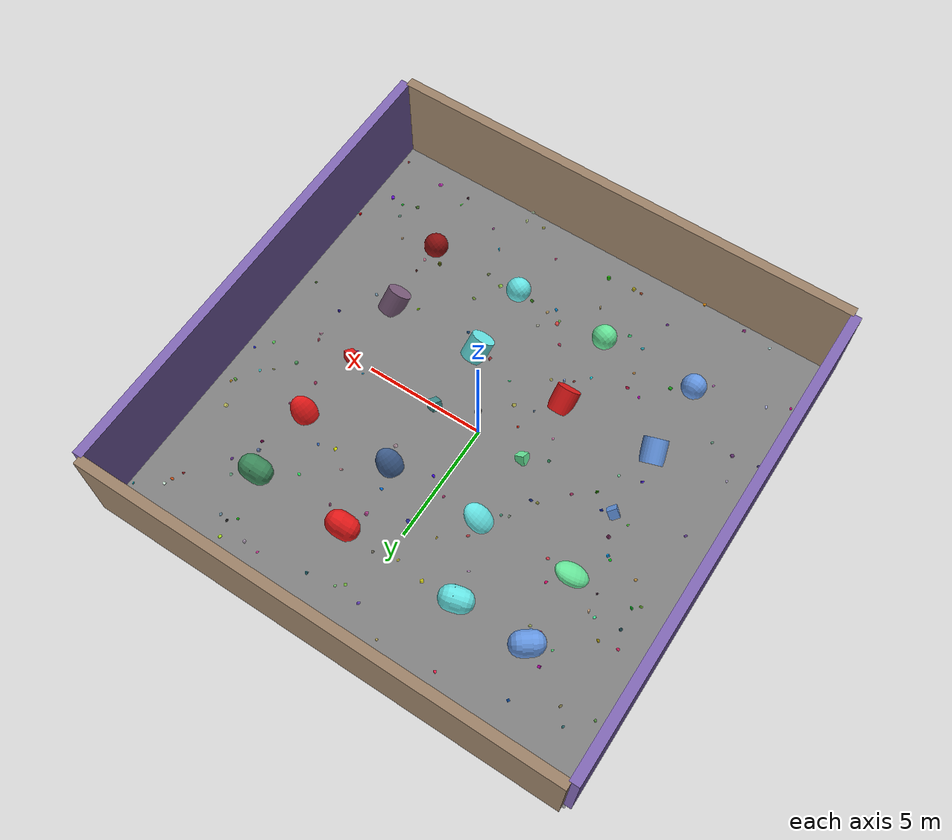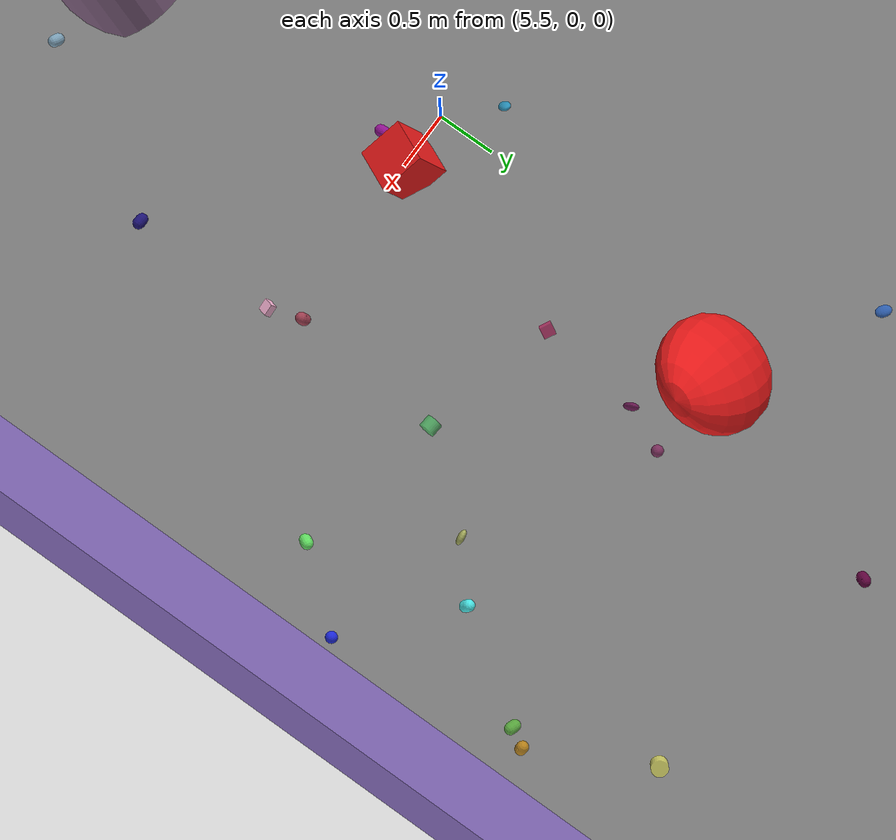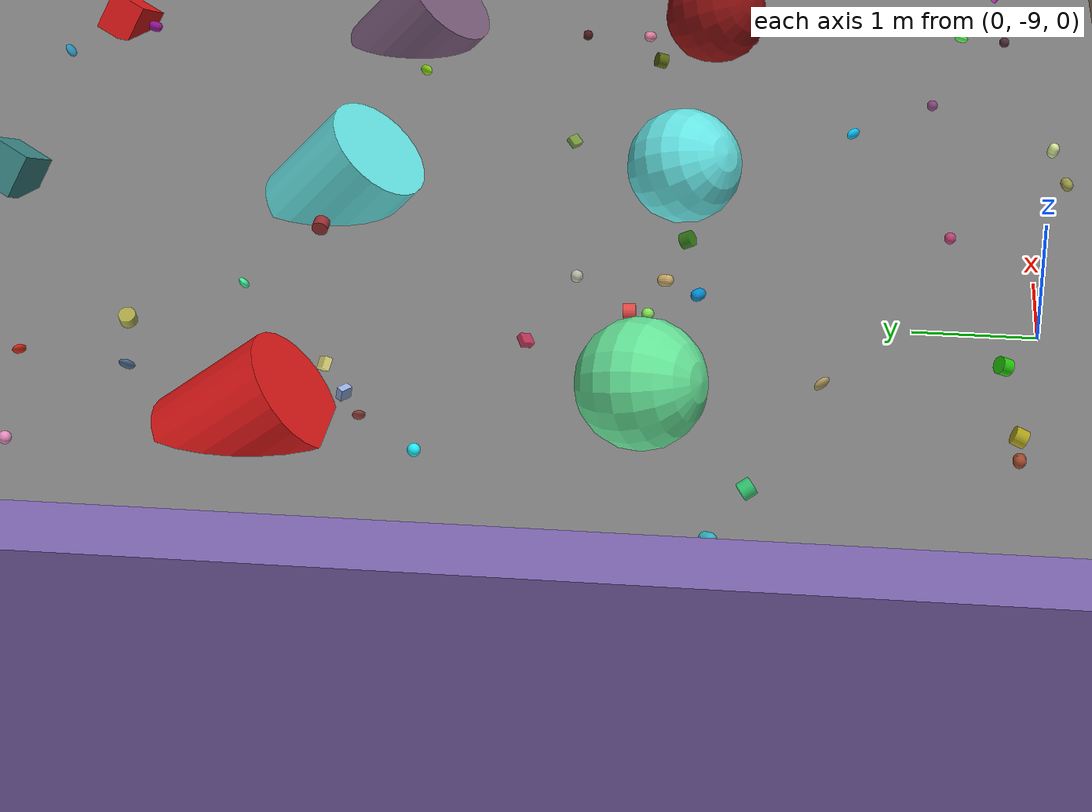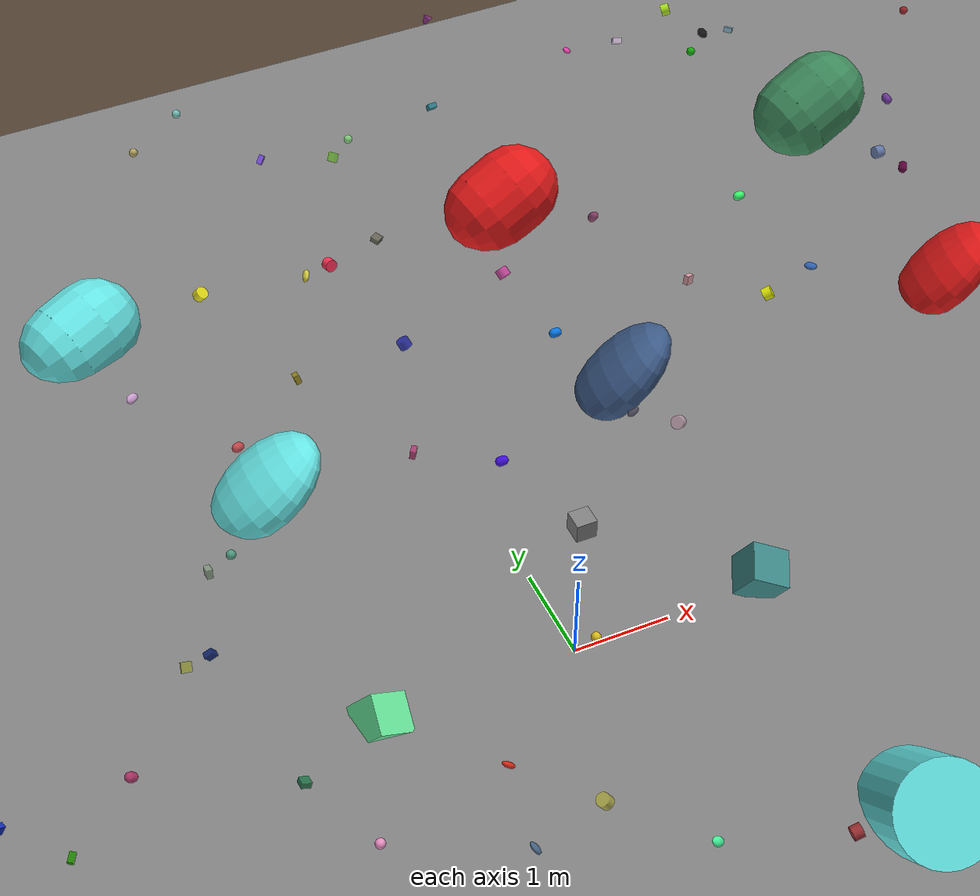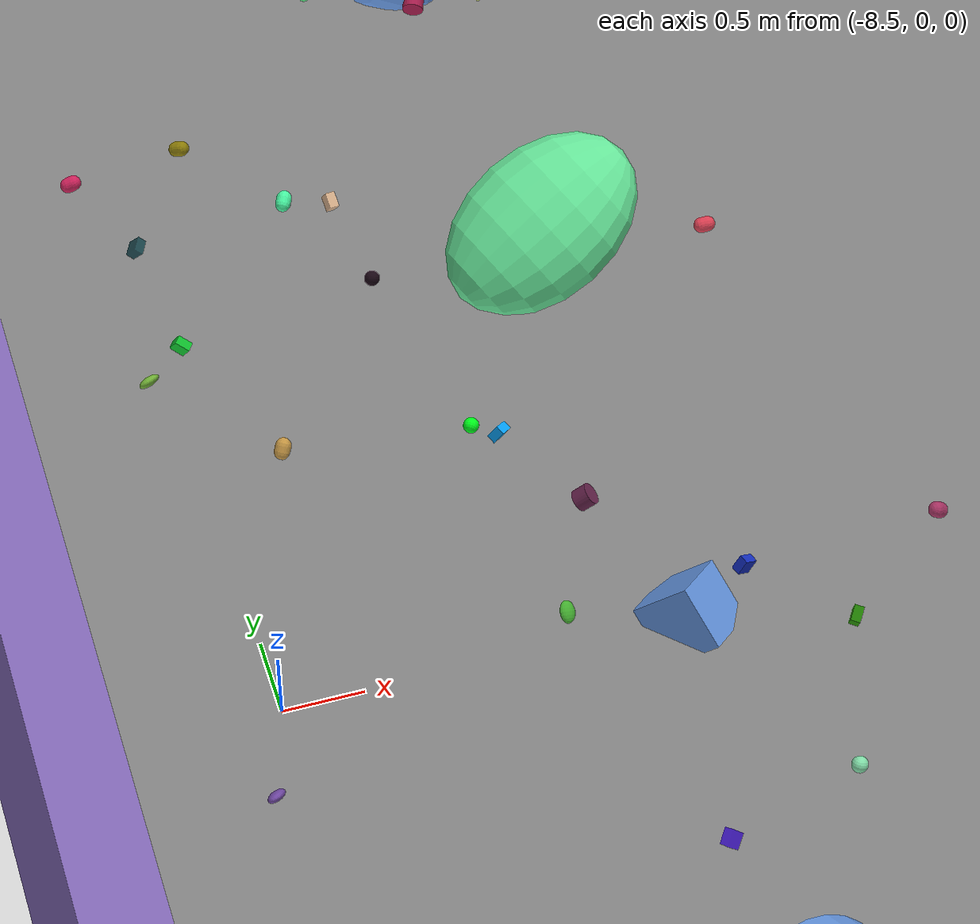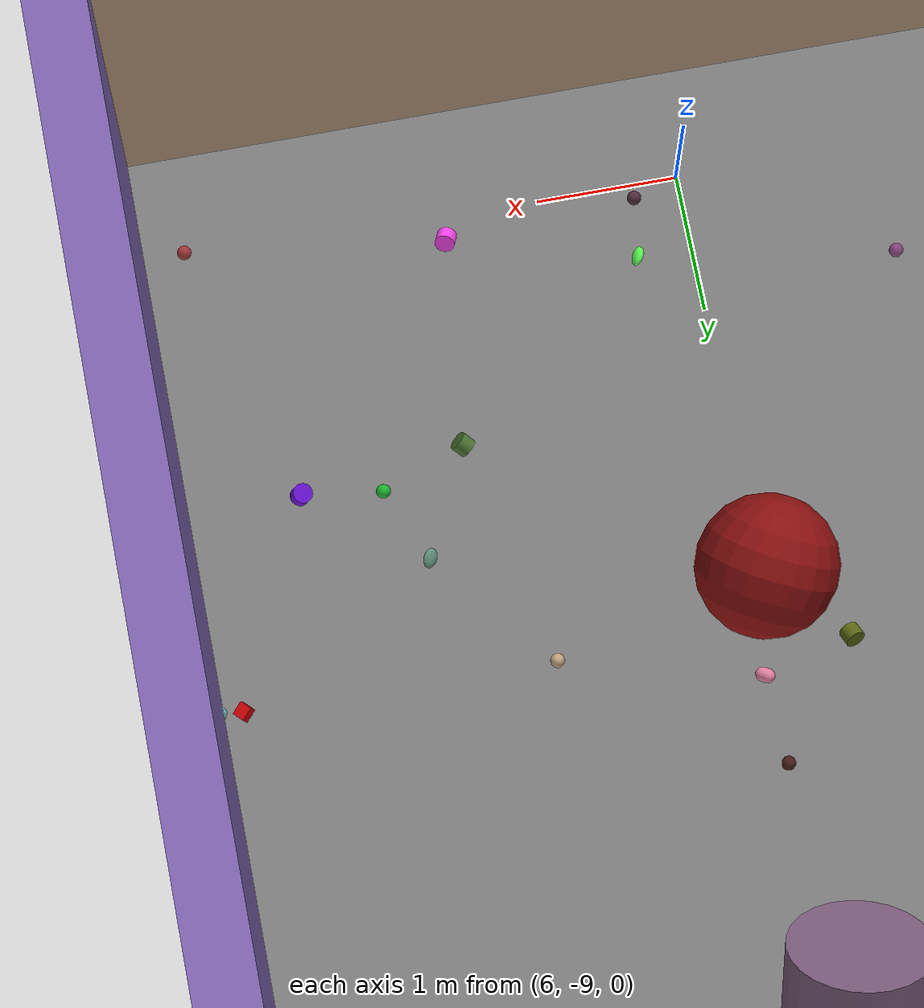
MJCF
<mujoco model="indoor">
    <compiler angle="radian" coordinate="local" inertiafromgeom="true"/>
    <option timestep="0.1" iterations="4" />

    <default>
        <joint armature="0" damping="1"/>
         <geom contype="0" conaffinity="0" condim="3" density="5.0" friction="1 0.5 0.5"/>

         <default class="borderpost">
            <geom type="box" size="9.9 0.2 2" material="matmarble"/>
        </default>
        <default class="roof">
            <geom type="box" size="10 10 0.2" rgba=".3 .55 .55 0.4"/>
        </default>
        <default class="object1">
            <geom type="capsule" material="object1" size="0.5 0.2"/>
        </default>
        <default class="object2">
            <geom type="ellipsoid" material="object2" size="0.5 0.3 0.7"/>
        </default>
        <default class="object3">
            <geom type="box" material="object3" size="0.2 0.2 0.2"/>
        </default>

        <default class="object4">
            <geom type="cylinder" material="object4" size="0.5 0.5" condim="4" friction="1 .01 .01"/>
        </default>

        <default class="object5">
            <geom type="sphere" material="object5" size="0.5"/>
        </default>

        <default class="object6">
            <geom type="capsule" material="object1" size="0.05 0.02"/>
        </default>
        <default class="object7">
            <geom type="ellipsoid" material="object2" size="0.05 0.03 0.07"/>
        </default>
        <default class="object8">
            <geom type="box" material="object3" size="0.05 0.03 0.05"/>
        </default>

        <default class="object9">
            <geom type="cylinder" material="object4" size="0.07 0.05" condim="4" friction="1 .01 .01"/>
        </default>

        <default class="object10">
            <geom type="sphere" material="object5" size="0.05"/>
        </default>

    </default>

    <asset>
        <texture name="texgeom" type="cube" builtin="flat" mark="cross" width="128" height="128"
            rgb1="0.6 0.6 0.6" rgb2="0.6 0.6 0.6" markrgb="1 1 1"/>
        <texture name="texmarble" type="cube" file="marble.png"/>
        <material name="matmarble" texture="texmarble" rgba=".7 .7 .7 1"/>
        <texture builtin="gradient" height="100" rgb1="1 1 1" rgb2="0 0 0" type="skybox" width="100"/>
        <texture builtin="flat" height="1278" mark="cross" markrgb="1 1 1" name="texgeom1" random="0.01" rgb1="0.8 0.6 0.4" rgb2="0.8 0.6 0.4" type="cube" width="127"/>
        <texture builtin="checker" height="100" name="texplane" rgb1="0.6 0.6 0.6" rgb2="0.4 0.4 0.4" type="2d" width="100"/>
        <material name="MatPlane" reflectance="0" shininess="0.2" specular="0.5" texrepeat="40 40" texture="texplane"/>
        <material name="geom" texture="texgeom" texuniform="true"/>
        <material name='object1' texture="texgeom" texuniform="true" rgba=".4 .9 .6 1" />
        <material name='object2' texture="texgeom" texuniform="true" rgba=".4 .6 .9 1" />
        <material name='object3' texture="texgeom" texuniform="true" rgba=".4 .9 .9 1" />
        <material name='object4' texture="texgeom" texuniform="true" rgba=".8 .6 .8 1" />
        <material name='object5' texture="texgeom" texuniform="true" rgba=".9 .1 .1 1" />

      </asset>

    <worldbody>

        <!--geom class="roof" pos="0 0 4" euler="0 0 0"/-->
        <geom class="borderpost" pos="0 10 2" euler="0 0 0" rgba=".6 .5 .4 1"/>
        <geom class="borderpost" pos="0 -10 2" euler="0 0 0" rgba=".6 .5 .4 1"/>
        <geom class="borderpost" pos="10 0 2" euler="0 0 1.5708" rgba=".5 .4 .7 1"/>
        <geom class="borderpost" pos="-10 0 2" euler="0 0 1.5708" rgba=".5 .4 .7 1"/>

        <light cutoff="80" diffuse="1 1 1" dir="-0 0 -1.3" directional="true" exponent="5" pos="0 1 1.3" specular=".1 .1 .1"/>
        <light pos="5 0 5" diffuse="1 1 1" specular="1 1 1" intensity="50"/>
        <geom conaffinity="1" condim="3" material="MatPlane" name="floor" pos="0 0 0" size="10 10 10" type="plane" rgba="0.5 0.5 0.5 1.0"/>
        <body name="fake_go2" pos="0 0 0.3" mocap="true">
            <geom name="fake_go2_geom" pos="0 0 0" size="0.01 0.01 0.3" type="box" rgba=".8 .7 .3 1"/>
            <body>
                <joint/>
                <camera name="came" mode="fixed" resolution="256 256" euler="1.57 -1.57 0" orthographic="false" fovy="30"/>
                <geom name="body_came" pos="0 0 1.5" size="0.1 0.1 0.1" type="box"/>
            </body>
        </body>

        <body name="GodView" pos="0 0 15">
            <camera name="godcame" mode="fixed" resolution="1080 1080" quat="1 0 0 0" fovy="70"/>
        </body>

        <body pos="-6 6 0.2" quat="-0.632456 -0.632456 0.316228 0.316228">
            <joint/>
            <geom class="object1" rgba=".4 .6 .9 1"/>
        </body>
        <body pos="-3 6 0.1" quat="-0.5547 -0.5547 0.5547 0.27735">
            <joint/>
            <geom class="object1" rgba=".4 .9 .9 1"/>
        </body>
        <body pos="2 6 0.3" quat="-0.471405 -0.471405 0.707107 0.235702">
            <joint/>
            <geom class="object1" rgba=".9 .1 .1 1"/>
        </body>
        <body pos="6 6 0.4" quat="-0.471405 -0.471405 0.707107 0.235702">
            <joint/>
            <geom class="object1"/>
        </body>

        <body pos="-6 3 0.3" quat="-0.377964 -0.755929 0.377964 0.377964">
            <joint/>
            <geom class="object2" rgba=".4 .9 .6 1"/>
        </body>
        <body pos="-2 3 0.2" quat="-0.316228 -0.632456 0.632456 0.316228">
            <joint/>
            <geom class="object2" rgba=".4 .9 .9 1"/>
        </body>
        <body pos="2 3 0.2" quat="-0.258199 -0.516398 0.774597 0.258199">
            <joint/>
            <geom class="object2"/>
        </body>
        <body pos="6 3 0.2" quat="-0.258199 -0.516398 0.774597 0.258199">
            <joint/>
            <geom class="object2" rgba=".9 .1 .1 1"/>
        </body>

        <body pos="-6 0 0" quat="0 -0.816497 0.408248 0.408248">
            <joint/>
            <geom class="object3" rgba=".4 .6 .9 1"/>
        </body>
        <body pos="-2 0 0" quat="0 -0.666667 0.666667 0.333333">
            <joint/>
            <geom class="object3" rgba=".4 .9 .6 1"/>
        </body>
        <body pos="2 0 0.2" quat="0 -0.534522 0.801784 0.267261">
            <joint/>
            <geom class="object3"/>
        </body>
        <body pos="6 0 0.1" quat="0 -0.534522 0.801784 0.267261">
            <joint/>
            <geom class="object3" rgba=".9 .1 .1 1"/>
        </body>

        <body pos="-6 -3 0" quat="0.377964 -0.755929 0.377964 0.377964">
            <joint/>
            <geom class="object4" rgba=".4 .6 .9 1"/>
        </body>
        <body pos="-2 -3 0" quat="0.316228 -0.632456 0.632456 0.316228">
            <joint/>
            <geom class="object4" rgba=".9 .1 .1 1"/>
        </body>
        <body pos="2 -3 0.2" quat="0.258199 -0.516398 0.774597 0.258199">
            <joint/>
            <geom class="object4" rgba=".4 .9 .9 1"/>
        </body>
        <body pos="6 -3 0.1" quat="0.258199 -0.516398 0.774597 0.258199">
            <joint/>
            <geom class="object4"/>
        </body>

        <body pos="-6 -6 0.5" quat="0.632456 -0.632456 0.316228 0.316228">
            <joint/>
            <geom class="object5" rgba=".4 .6 .9 1"/>
        </body>
        <body pos="-2 -6 0.5" quat="0.5547 -0.5547 0.5547 0.27735">
            <joint/>
            <geom class="object5" rgba=".4 .9 .6 1"/>
        </body>
        <body pos="2 -6 0.5" quat="0.471405 -0.471405 0.707107 0.235702">
            <joint/>
            <geom class="object5" rgba=".4 .9 .9 1"/>
        </body>
        <body pos="6 -6 0.4" quat="0.471405 -0.471405 0.707107 0.235702">
            <joint/>
            <geom class="object5"/>
        </body>

        <body pos="-1.77 -8.80 0.08" quat="0.380990 0.639594 -0.558686 0.365563">
            <joint/>
            <geom class="object9" rgba="0.78 0.72 0.06 0.82" />
        </body>

        <body pos="-0.11 5.99 0.08" quat="-0.078356 -0.163085 0.592656 -0.784871">
            <joint/>
            <geom class="object9" rgba="0.99 0.19 0.34 0.92" />
        </body>

        <body pos="-7.63 -9.36 0.08" quat="0.633710 -0.325476 -0.346480 0.610269">
            <joint/>
            <geom class="object7" rgba="0.78 0.96 0.96 0.94" />
        </body>

        <body pos="3.43 4.15 0.08" quat="-0.078396 0.783101 0.231344 0.571915">
            <joint/>
            <geom class="object8" rgba="0.88 0.63 0.67 0.96" />
        </body>

        <body pos="-0.60 -4.95 0.08" quat="-0.339245 0.264513 0.815014 -0.388197">
            <joint/>
            <geom class="object8" rgba="0.84 0.17 0.35 0.81" />
        </body>

        <body pos="0.59 -5.96 0.08" quat="0.661675 0.461315 -0.459945 0.371248">
            <joint/>
            <geom class="object6" rgba="0.78 0.65 0.40 0.96" />
        </body>

        <body pos="9.19 -2.01 0.08" quat="-0.194755 0.304710 -0.452815 0.814973">
            <joint/>
            <geom class="object10" rgba="0.22 0.40 0.11 0.83" />
        </body>

        <body pos="-3.44 -6.60 0.08" quat="0.298662 0.051283 0.759192 0.576020">
            <joint/>
            <geom class="object6" rgba="0.18 0.77 0.84 0.87" />
        </body>

        <body pos="6.10 -4.70 0.08" quat="0.635872 -0.579997 0.506369 -0.053492">
            <joint/>
            <geom class="object10" rgba="0.28 0.11 0.10 0.98" />
        </body>

        <body pos="-6.51 8.02 0.08" quat="-0.583889 -0.076005 -0.582774 0.560064">
            <joint/>
            <geom class="object8" rgba="0.07 0.35 0.72 0.97" />
        </body>

        <body pos="8.92 1.17 0.08" quat="-0.238110 -0.726271 -0.485898 0.423954">
            <joint/>
            <geom class="object6" rgba="0.41 0.97 0.41 0.87" />
        </body>

        <body pos="-3.82 -4.76 0.08" quat="-0.489983 0.860043 -0.036210 -0.137591">
            <joint/>
            <geom class="object9" rgba="0.78 0.02 0.23 0.81" />
        </body>

        <body pos="-6.78 6.44 0.08" quat="0.740490 0.645733 0.153131 -0.106080">
            <joint/>
            <geom class="object8" rgba="0.64 0.01 0.59 0.98" />
        </body>

        <body pos="9.51 -9.06 0.08" quat="-0.032844 0.482354 -0.522110 0.702607">
            <joint/>
            <geom class="object10" rgba="0.70 0.19 0.20 0.84" />
        </body>

        <body pos="-8.59 -4.42 0.08" quat="0.562827 -0.060976 -0.668523 -0.482271">
            <joint/>
            <geom class="object9" rgba="0.40 0.17 0.47 0.81" />
        </body>

        <body pos="-1.48 8.76 0.08" quat="0.813308 0.253807 0.495426 0.169304">
            <joint/>
            <geom class="object10" rgba="0.72 0.65 0.37 0.94" />
        </body>

        <body pos="-1.10 4.45 0.08" quat="-0.485642 0.632061 -0.497256 -0.342618">
            <joint/>
            <geom class="object8" rgba="0.59 0.52 0.13 0.92" />
        </body>

        <body pos="2.94 5.53 0.08" quat="-0.257812 0.463777 0.842748 0.090659">
            <joint/>
            <geom class="object6" rgba="0.57 0.23 0.42 0.83" />
        </body>

        <body pos="-1.15 -3.44 0.08" quat="-0.295988 0.294513 -0.216414 0.882507">
            <joint/>
            <geom class="object8" rgba="0.97 0.94 0.53 0.89" />
        </body>

        <body pos="8.60 2.48 0.08" quat="-0.063496 -0.210681 0.289482 0.931548">
            <joint/>
            <geom class="object6" rgba="0.29 0.90 0.90 0.91" />
        </body>

        <body pos="-6.35 0.96 0.08" quat="0.750288 0.295683 0.316752 0.499307">
            <joint/>
            <geom class="object9" rgba="0.40 0.14 0.30 0.92" />
        </body>

        <body pos="4.60 -8.16 0.08" quat="-0.366550 -0.415911 -0.285337 -0.781819">
            <joint/>
            <geom class="object10" rgba="0.58 0.26 0.54 0.81" />
        </body>

        <body pos="-0.04 -5.87 0.08" quat="0.221779 -0.333010 0.594290 0.697666">
            <joint/>
            <geom class="object10" rgba="0.53 0.90 0.33 0.90" />
        </body>

        <body pos="-0.16 8.03 0.08" quat="-0.435847 -0.418547 0.792879 -0.078732">
            <joint/>
            <geom class="object8" rgba="0.50 0.32 0.93 0.89" />
        </body>

        <body pos="8.45 -7.09 0.08" quat="-0.027091 0.635895 -0.668770 0.384254">
            <joint/>
            <geom class="object10" rgba="0.07 0.80 0.17 0.84" />
        </body>

        <body pos="-10.00 -2.54 0.08" quat="-0.700098 -0.291181 -0.039537 0.650779">
            <joint/>
            <geom class="object6" rgba="0.44 0.94 0.54 0.99" />
        </body>

        <body pos="-0.02 -5.72 0.08" quat="-0.469630 0.527162 -0.491886 -0.509506">
            <joint/>
            <geom class="object9" rgba="1.00 0.30 0.28 0.86" />
        </body>

        <body pos="-8.41 2.84 0.08" quat="-0.482934 -0.307465 -0.815086 0.088740">
            <joint/>
            <geom class="object8" rgba="0.06 0.76 0.18 0.95" />
        </body>

        <body pos="-7.48 3.86 0.08" quat="0.537088 -0.094031 0.523179 0.654965">
            <joint/>
            <geom class="object6" rgba="0.28 0.97 0.64 0.98" />
        </body>

        <body pos="1.60 5.08 0.08" quat="0.151105 -0.218665 0.427547 0.864035">
            <joint/>
            <geom class="object9" rgba="0.83 0.27 0.65 0.85" />
        </body>

        <body pos="8.22 -6.56 0.08" quat="-0.303227 0.029770 -0.753565 -0.582500">
            <joint/>
            <geom class="object7" rgba="0.38 0.60 0.51 0.85" />
        </body>

        <body pos="-8.12 7.20 0.08" quat="-0.709038 0.666288 -0.199217 -0.116787">
            <joint/>
            <geom class="object7" rgba="0.48 0.45 0.25 0.89" />
        </body>

        <body pos="5.00 -3.23 0.08" quat="-0.584541 0.325724 -0.660660 -0.340212">
            <joint/>
            <geom class="object7" rgba="0.55 0.84 0.07 0.99" />
        </body>

        <body pos="5.44 7.85 0.08" quat="-0.628447 -0.260090 -0.016572 0.732893">
            <joint/>
            <geom class="object10" rgba="0.08 0.69 0.06 0.96" />
        </body>

        <body pos="-4.33 0.26 0.08" quat="0.366689 -0.637815 0.651052 -0.186716">
            <joint/>
            <geom class="object6" rgba="0.73 0.18 0.41 0.84" />
        </body>

        <body pos="-6.71 0.16 0.08" quat="-0.458505 -0.870519 -0.131911 0.120701">
            <joint/>
            <geom class="object7" rgba="0.28 0.76 0.19 0.88" />
        </body>

        <body pos="1.35 -2.91 0.08" quat="0.602529 -0.137555 -0.783226 0.067785">
            <joint/>
            <geom class="object9" rgba="0.59 0.18 0.19 0.98" />
        </body>

        <body pos="2.84 -5.97 0.08" quat="0.361131 -0.596064 0.713660 -0.070585">
            <joint/>
            <geom class="object9" rgba="0.64 0.89 0.29 0.85" />
        </body>

        <body pos="-2.59 2.40 0.08" quat="-0.900493 0.433995 0.023031 0.015154">
            <joint/>
            <geom class="object10" rgba="0.31 0.66 0.54 0.87" />
        </body>

        <body pos="-7.19 3.77 0.08" quat="-0.729518 -0.134811 -0.239112 0.626462">
            <joint/>
            <geom class="object8" rgba="0.94 0.76 0.59 0.87" />
        </body>

        <body pos="-8.56 7.75 0.08" quat="0.751522 0.418277 -0.043829 -0.508269">
            <joint/>
            <geom class="object7" rgba="0.18 0.47 0.49 0.85" />
        </body>

        <body pos="-1.88 -3.19 0.08" quat="0.263106 -0.845002 0.274585 0.375966">
            <joint/>
            <geom class="object6" rgba="0.28 0.42 0.06 0.86" />
        </body>

        <body pos="6.14 -6.37 0.08" quat="-0.493648 0.486742 -0.717142 0.071422">
            <joint/>
            <geom class="object10" rgba="0.62 0.25 0.52 0.88" />
        </body>

        <body pos="-2.08 2.81 0.08" quat="0.668666 0.389193 0.620901 0.126081">
            <joint/>
            <geom class="object8" rgba="0.77 0.22 0.59 0.88" />
        </body>

        <body pos="3.40 -4.88 0.08" quat="-0.691149 0.524631 0.490963 -0.077662">
            <joint/>
            <geom class="object8" rgba="0.49 0.67 0.21 0.80" />
        </body>

        <body pos="-9.38 6.97 0.08" quat="0.194554 -0.581240 -0.790065 0.010332">
            <joint/>
            <geom class="object6" rgba="0.36 0.65 0.27 0.89" />
        </body>

        <body pos="0.54 6.18 0.08" quat="0.166512 -0.236297 0.733382 -0.615295">
            <joint/>
            <geom class="object8" rgba="0.42 0.41 0.35 0.88" />
        </body>

        <body pos="2.07 8.14 0.08" quat="-0.658686 -0.257149 0.671153 0.222623">
            <joint/>
            <geom class="object8" rgba="0.18 0.49 0.54 0.91" />
        </body>

        <body pos="5.89 -0.29 0.08" quat="-0.249810 0.181812 -0.566974 -0.763596">
            <joint/>
            <geom class="object6" rgba="0.57 0.07 0.57 0.94" />
        </body>

        <body pos="9.41 1.77 0.08" quat="-0.333014 -0.088897 -0.137197 0.928642">
            <joint/>
            <geom class="object10" rgba="0.12 0.16 0.86 0.95" />
        </body>

        <body pos="-4.93 2.89 0.08" quat="-0.560900 0.444273 0.608993 -0.342258">
            <joint/>
            <geom class="object6" rgba="0.98 0.24 0.33 0.84" />
        </body>

        <body pos="-4.51 -9.73 0.08" quat="0.544257 -0.515517 0.513382 -0.417691">
            <joint/>
            <geom class="object8" rgba="0.85 0.51 0.02 0.96" />
        </body>

        <body pos="-9.79 7.19 0.08" quat="-0.254254 -0.467677 -0.605420 -0.591692">
            <joint/>
            <geom class="object6" rgba="0.79 0.75 0.87 0.89" />
        </body>

        <body pos="-2.92 -0.43 0.08" quat="0.544186 -0.428614 -0.358473 0.625818">
            <joint/>
            <geom class="object8" rgba="0.11 0.48 0.29 0.82" />
        </body>

        <body pos="-0.42 5.92 0.08" quat="0.504785 0.683537 -0.517517 0.100728">
            <joint/>
            <geom class="object7" rgba="0.84 0.81 0.25 0.95" />
        </body>

        <body pos="-8.49 3.73 0.08" quat="0.338047 -0.779132 -0.512712 0.125711">
            <joint/>
            <geom class="object8" rgba="0.10 0.29 0.32 0.89" />
        </body>

        <body pos="-7.70 -4.49 0.08" quat="0.333113 -0.466316 -0.335084 -0.747866">
            <joint/>
            <geom class="object6" rgba="0.40 0.62 0.52 0.89" />
        </body>

        <body pos="3.54 -6.17 0.08" quat="0.627493 -0.361342 0.675678 0.138358">
            <joint/>
            <geom class="object6" rgba="0.47 0.54 0.32 0.92" />
        </body>

        <body pos="6.33 -8.88 0.08" quat="-0.618468 0.450301 -0.123270 0.632085">
            <joint/>
            <geom class="object10" rgba="0.31 0.17 0.23 0.92" />
        </body>

        <body pos="7.59 -0.18 0.08" quat="-0.371420 -0.485703 0.262078 0.746629">
            <joint/>
            <geom class="object8" rgba="0.98 0.71 0.84 0.91" />
        </body>

        <body pos="-3.20 1.30 0.08" quat="-0.032237 0.474358 -0.077939 0.876282">
            <joint/>
            <geom class="object8" rgba="0.06 0.14 0.46 0.87" />
        </body>

        <body pos="6.77 6.59 0.08" quat="-0.202818 0.643050 -0.494990 -0.548030">
            <joint/>
            <geom class="object8" rgba="0.52 0.83 0.66 0.88" />
        </body>

        <body pos="-0.54 -1.71 0.08" quat="0.679502 -0.192531 -0.196972 0.680008">
            <joint/>
            <geom class="object9" rgba="0.74 0.72 0.29 0.86" />
        </body>

        <body pos="-5.73 5.37 0.08" quat="-0.617150 -0.328384 0.185714 0.690507">
            <joint/>
            <geom class="object6" rgba="0.68 0.73 0.40 0.97" />
        </body>

        <body pos="1.71 3.97 0.08" quat="-0.427226 -0.521404 0.529553 0.514965">
            <joint/>
            <geom class="object6" rgba="0.03 0.47 0.90 0.91" />
        </body>

        <body pos="-5.35 3.69 0.08" quat="0.734479 -0.655686 0.095384 -0.146690">
            <joint/>
            <geom class="object6" rgba="0.86 0.03 0.41 0.90" />
        </body>

        <body pos="-5.23 -5.65 0.08" quat="0.270796 -0.383195 -0.669750 -0.575558">
            <joint/>
            <geom class="object9" rgba="0.11 0.66 0.11 0.92" />
        </body>

        <body pos="4.78 3.79 0.08" quat="-0.346685 0.280192 -0.655643 0.609454">
            <joint/>
            <geom class="object7" rgba="0.18 0.37 0.68 0.93" />
        </body>

        <body pos="-6.41 -9.53 0.08" quat="0.419162 -0.630734 -0.637018 -0.143827">
            <joint/>
            <geom class="object9" rgba="0.59 0.17 0.51 0.90" />
        </body>

        <body pos="-2.12 -8.79 0.08" quat="-0.492902 0.496872 -0.559959 0.443408">
            <joint/>
            <geom class="object6" rgba="0.63 0.29 0.17 0.92" />
        </body>

        <body pos="2.29 2.23 0.08" quat="-0.286276 -0.234676 -0.852618 -0.368803">
            <joint/>
            <geom class="object9" rgba="0.81 0.67 0.73 0.81" />
        </body>

        <body pos="-8.02 4.51 0.08" quat="-0.593338 0.132889 -0.529993 0.591099">
            <joint/>
            <geom class="object6" rgba="0.61 0.54 0.00 0.86" />
        </body>

        <body pos="-1.32 -1.91 0.08" quat="0.050410 0.540727 -0.716824 0.437306">
            <joint/>
            <geom class="object7" rgba="0.29 0.42 0.56 0.88" />
        </body>

        <body pos="-1.60 -3.68 0.08" quat="0.930832 0.119400 -0.053453 -0.341231">
            <joint/>
            <geom class="object8" rgba="0.59 0.68 0.89 0.98" />
        </body>

        <body pos="1.85 -3.20 0.08" quat="-0.247922 0.601756 0.723647 0.229693">
            <joint/>
            <geom class="object9" rgba="0.49 0.72 0.71 0.87" />
        </body>

        <body pos="-9.90 0.85 0.08" quat="0.292143 0.473074 0.214997 0.802888">
            <joint/>
            <geom class="object9" rgba="0.44 0.64 0.00 0.93" />
        </body>

        <body pos="2.89 -9.35 0.08" quat="0.516568 -0.558199 0.173872 -0.625572">
            <joint/>
            <geom class="object6" rgba="0.66 0.66 0.30 0.88" />
        </body>

        <body pos="-7.11 3.05 0.08" quat="0.476127 -0.499264 0.723163 -0.032765">
            <joint/>
            <geom class="object10" rgba="0.10 0.03 0.08 0.96" />
        </body>

        <body pos="0.59 -5.22 0.08" quat="-0.301409 0.733692 -0.488296 0.363889">
            <joint/>
            <geom class="object6" rgba="0.81 0.82 0.73 0.83" />
        </body>

        <body pos="9.66 -5.73 0.08" quat="0.738995 -0.535538 -0.117337 0.391558">
            <joint/>
            <geom class="object8" rgba="0.86 0.01 0.04 0.96" />
        </body>

        <body pos="6.80 -2.87 0.08" quat="0.144947 0.664363 -0.475640 -0.558013">
            <joint/>
            <geom class="object6" rgba="0.53 0.69 0.79 0.88" />
        </body>

        <body pos="8.50 7.94 0.08" quat="0.698547 0.173366 0.599500 0.350109">
            <joint/>
            <geom class="object6" rgba="0.91 0.35 0.09 0.85" />
        </body>

        <body pos="-3.46 1.25 0.08" quat="0.004617 0.085088 0.393202 0.915495">
            <joint/>
            <geom class="object8" rgba="0.60 0.62 0.22 0.84" />
        </body>

        <body pos="-1.59 6.11 0.08" quat="0.001268 -0.649531 0.678407 0.343324">
            <joint/>
            <geom class="object9" rgba="1.00 0.97 0.04 0.83" />
        </body>

        <body pos="-2.87 2.28 0.08" quat="0.459287 -0.562824 -0.544307 -0.419540">
            <joint/>
            <geom class="object8" rgba="0.55 0.63 0.53 0.85" />
        </body>

        <body pos="8.63 8.24 0.08" quat="0.642697 -0.754361 -0.066222 -0.116170">
            <joint/>
            <geom class="object8" rgba="0.85 0.97 0.89 0.98" />
        </body>

        <body pos="-3.84 8.58 0.08" quat="0.119130 0.721348 -0.406529 0.547904">
            <joint/>
            <geom class="object6" rgba="0.96 0.13 0.32 0.96" />
        </body>

        <body pos="5.60 2.93 0.08" quat="-0.045769 -0.740306 0.557683 0.372615">
            <joint/>
            <geom class="object7" rgba="0.91 0.43 0.32 0.87" />
        </body>

        <body pos="-6.58 -6.67 0.08" quat="0.409700 0.503926 0.550056 0.525018">
            <joint/>
            <geom class="object10" rgba="0.81 0.42 0.81 0.81" />
        </body>

        <body pos="5.12 9.32 0.08" quat="0.571041 -0.654239 0.480871 0.121020">
            <joint/>
            <geom class="object10" rgba="0.18 0.42 0.11 0.90" />
        </body>

        <body pos="3.64 -9.26 0.08" quat="-0.912311 -0.187762 0.025676 -0.363009">
            <joint/>
            <geom class="object6" rgba="0.83 0.92 0.61 0.92" />
        </body>

        <body pos="3.84 -7.43 0.08" quat="0.681550 0.309987 0.607623 -0.264938">
            <joint/>
            <geom class="object7" rgba="0.04 0.79 1.00 0.94" />
        </body>

        <body pos="6.08 8.06 0.08" quat="-0.455545 -0.113403 0.676779 0.567088">
            <joint/>
            <geom class="object8" rgba="0.48 0.63 0.71 0.97" />
        </body>

        <body pos="5.75 8.13 0.08" quat="0.798274 -0.577608 -0.167772 0.031306">
            <joint/>
            <geom class="object6" rgba="0.04 0.04 0.04 0.82" />
        </body>

        <body pos="1.65 -8.31 0.08" quat="-0.056500 0.718876 0.637671 -0.270927">
            <joint/>
            <geom class="object10" rgba="0.82 0.26 0.50 0.89" />
        </body>

        <body pos="6.64 4.86 0.08" quat="0.278029 0.022370 -0.849966 0.446943">
            <joint/>
            <geom class="object6" rgba="0.37 0.02 0.24 0.92" />
        </body>

        <body pos="-8.69 -0.62 0.08" quat="0.375182 -0.001499 0.838941 0.394225">
            <joint/>
            <geom class="object7" rgba="0.47 0.29 0.70 0.88" />
        </body>

        <body pos="-6.38 -6.02 0.08" quat="0.484206 0.688038 0.273132 -0.466420">
            <joint/>
            <geom class="object10" rgba="0.74 0.14 0.54 0.93" />
        </body>

        <body pos="7.61 1.42 0.08" quat="-0.500110 0.456470 -0.530197 0.510310">
            <joint/>
            <geom class="object9" rgba="0.32 0.72 0.40 0.83" />
        </body>

        <body pos="-3.71 -5.46 0.08" quat="0.722148 -0.005357 0.372947 0.582566">
            <joint/>
            <geom class="object7" rgba="0.91 0.62 0.26 0.80" />
        </body>

        <body pos="-1.08 -7.31 0.08" quat="-0.804865 -0.336320 -0.393716 0.289945">
            <joint/>
            <geom class="object7" rgba="0.69 0.60 0.38 0.99" />
        </body>

        <body pos="9.01 -7.17 0.08" quat="0.978002 -0.071072 -0.104412 0.166007">
            <joint/>
            <geom class="object9" rgba="0.39 0.06 0.80 0.98" />
        </body>

        <body pos="0.92 7.97 0.08" quat="-0.703456 -0.126239 0.620777 0.322255">
            <joint/>
            <geom class="object10" rgba="0.56 0.92 0.53 0.81" />
        </body>

        <body pos="-2.02 3.75 0.08" quat="0.138103 0.586040 0.561321 0.567807">
            <joint/>
            <geom class="object6" rgba="0.87 0.26 0.29 0.80" />
        </body>

        <body pos="9.61 8.87 0.08" quat="0.235684 0.687898 -0.425689 0.538552">
            <joint/>
            <geom class="object7" rgba="0.13 0.76 0.82 0.93" />
        </body>

        <body pos="-6.30 -1.63 0.08" quat="0.161035 -0.376454 -0.335060 -0.848578">
            <joint/>
            <geom class="object8" rgba="0.26 0.05 0.94 0.81" />
        </body>

        <body pos="3.64 -9.78 0.08" quat="-0.922391 0.210950 -0.274808 -0.170809">
            <joint/>
            <geom class="object8" rgba="0.81 0.92 0.76 1.00" />
        </body>

        <body pos="-8.01 1.85 0.08" quat="-0.143691 -0.775841 -0.504441 0.350662">
            <joint/>
            <geom class="object6" rgba="0.87 0.65 0.26 0.84" />
        </body>

        <body pos="-3.72 -8.08 0.08" quat="-0.427395 0.649012 -0.521175 0.352836">
            <joint/>
            <geom class="object7" rgba="0.38 0.13 0.55 0.86" />
        </body>

        <body pos="-1.16 -1.00 0.08" quat="0.720429 0.118531 -0.471281 -0.494799">
            <joint/>
            <geom class="object7" rgba="0.90 0.15 0.07 0.88" />
        </body>

        <body pos="-2.73 -6.83 0.08" quat="0.264399 -0.067123 0.527634 -0.804481">
            <joint/>
            <geom class="object9" rgba="0.18 0.86 0.46 0.85" />
        </body>

        <body pos="0.23 0.01 0.08" quat="0.614337 0.504812 -0.506833 -0.332980">
            <joint/>
            <geom class="object10" rgba="0.86 0.74 0.11 0.94" />
        </body>

        <body pos="4.05 8.49 0.08" quat="-0.505704 0.716042 -0.479518 0.040119">
            <joint/>
            <geom class="object7" rgba="1.00 0.26 0.73 0.89" />
        </body>

        <body pos="1.93 2.56 0.08" quat="-0.599843 0.059021 0.772812 -0.198663">
            <joint/>
            <geom class="object7" rgba="0.34 0.33 0.42 0.82" />
        </body>

        <body pos="-8.77 4.40 0.08" quat="-0.634137 0.328557 -0.445767 0.539640">
            <joint/>
            <geom class="object6" rgba="0.91 0.11 0.38 0.86" />
        </body>

        <body pos="4.70 8.42 0.08" quat="0.385063 -0.907385 0.159832 0.053227">
            <joint/>
            <geom class="object8" rgba="0.84 0.75 0.87 0.87" />
        </body>

        <body pos="6.57 2.61 0.08" quat="-0.537914 0.401926 -0.224960 -0.706044">
            <joint/>
            <geom class="object7" rgba="0.41 0.10 0.32 0.94" />
        </body>

        <body pos="-0.78 9.25 0.08" quat="-0.247045 -0.898269 -0.177611 -0.317074">
            <joint/>
            <geom class="object10" rgba="0.48 0.86 0.80 0.84" />
        </body>

        <body pos="-6.85 1.70 0.08" quat="0.545952 -0.082457 0.582460 0.596555">
            <joint/>
            <geom class="object10" rgba="0.00 1.00 0.11 0.93" />
        </body>

        <body pos="5.49 -5.50 0.08" quat="0.394086 -0.429941 0.384540 0.715525">
            <joint/>
            <geom class="object9" rgba="0.35 0.40 0.07 0.94" />
        </body>

        <body pos="7.50 -5.69 0.08" quat="-0.057251 0.940794 0.332102 0.036560">
            <joint/>
            <geom class="object10" rgba="0.76 0.64 0.50 0.96" />
        </body>

        <body pos="-6.70 1.60 0.08" quat="-0.311081 0.265853 -0.142913 0.901180">
            <joint/>
            <geom class="object8" rgba="0.03 0.65 0.99 0.93" />
        </body>

        <body pos="7.15 6.05 0.08" quat="-0.810249 0.537469 0.187900 0.138987">
            <joint/>
            <geom class="object6" rgba="0.41 0.21 0.58 0.95" />
        </body>

        <body pos="5.15 0.38 0.08" quat="0.068637 -0.214504 -0.913864 0.337830">
            <joint/>
            <geom class="object7" rgba="0.15 0.62 0.80 0.86" />
        </body>

        <body pos="1.39 -6.08 0.08" quat="0.527188 0.396320 0.325107 -0.677723">
            <joint/>
            <geom class="object9" rgba="0.18 0.52 0.06 0.85" />
        </body>

        <body pos="-5.08 -0.35 0.08" quat="-0.518541 -0.449139 0.696489 -0.210459">
            <joint/>
            <geom class="object8" rgba="0.13 0.50 0.01 0.94" />
        </body>

        <body pos="0.63 7.73 0.08" quat="-0.168778 0.517483 -0.579589 -0.606467">
            <joint/>
            <geom class="object8" rgba="0.58 0.93 0.30 0.85" />
        </body>

        <body pos="-9.98 4.79 0.08" quat="0.448697 0.723359 0.308654 0.424447">
            <joint/>
            <geom class="object6" rgba="0.41 0.45 0.35 0.90" />
        </body>

        <body pos="6.13 -5.33 0.08" quat="0.553516 0.590318 0.576193 0.114656">
            <joint/>
            <geom class="object6" rgba="0.89 0.51 0.63 0.91" />
        </body>

        <body pos="1.62 -2.99 0.08" quat="0.534740 0.818396 -0.090041 -0.190193">
            <joint/>
            <geom class="object9" rgba="0.43 0.05 0.95 0.89" />
        </body>

        <body pos="6.45 1.72 0.08" quat="-0.136050 0.561610 -0.536867 0.614702">
            <joint/>
            <geom class="object8" rgba="0.77 0.19 0.42 0.82" />
        </body>

        <body pos="-5.43 -1.36 0.08" quat="0.134788 0.132781 0.213401 0.958468">
            <joint/>
            <geom class="object10" rgba="0.55 0.98 0.73 0.85" />
        </body>

        <body pos="8.75 4.40 0.08" quat="0.051127 -0.648359 -0.720575 0.240392">
            <joint/>
            <geom class="object9" rgba="0.92 0.91 0.42 0.85" />
        </body>

        <body pos="-5.59 0.20 0.08" quat="0.866002 0.122442 -0.468852 0.123398">
            <joint/>
            <geom class="object8" rgba="0.08 0.18 0.75 0.90" />
        </body>

        <body pos="2.72 9.81 0.08" quat="0.199056 0.858610 -0.282521 0.378614">
            <joint/>
            <geom class="object8" rgba="0.61 0.24 0.59 0.87" />
        </body>

        <body pos="9.83 -5.74 0.08" quat="0.323546 0.665408 -0.663367 0.111780">
            <joint/>
            <geom class="object6" rgba="0.48 0.81 0.82 0.86" />
        </body>

        <body pos="-9.54 -7.43 0.08" quat="-0.824558 0.011745 0.108475 0.555157">
            <joint/>
            <geom class="object10" rgba="0.91 0.00 0.56 0.92" />
        </body>

        <body pos="-0.65 -8.71 0.08" quat="0.544735 -0.490034 0.193474 0.652456">
            <joint/>
            <geom class="object9" rgba="0.15 0.78 0.04 0.93" />
        </body>

        <body pos="9.25 3.46 0.08" quat="-0.180398 -0.618727 -0.758263 -0.098335">
            <joint/>
            <geom class="object6" rgba="0.82 0.56 0.06 0.81" />
        </body>

        <body pos="7.69 -8.82 0.08" quat="0.470772 0.860592 -0.172177 -0.090055">
            <joint/>
            <geom class="object9" rgba="0.96 0.26 0.92 0.90" />
        </body>

        <body pos="-2.79 4.87 0.08" quat="-0.718051 0.390953 -0.563890 0.116562">
            <joint/>
            <geom class="object7" rgba="0.80 0.62 0.82 1.00" />
        </body>

        <body pos="-9.64 -4.58 0.08" quat="0.377852 0.595325 0.038955 -0.708025">
            <joint/>
            <geom class="object6" rgba="0.26 0.20 0.49 0.86" />
        </body>

        <body pos="8.19 2.13 0.08" quat="-0.037958 -0.875113 -0.112970 -0.469014">
            <joint/>
            <geom class="object7" rgba="0.72 0.75 0.40 0.89" />
        </body>

        <body pos="-2.42 -4.36 0.08" quat="0.715484 -0.066793 -0.155811 -0.677750">
            <joint/>
            <geom class="object10" rgba="0.12 0.94 1.00 0.96" />
        </body>

        <body pos="-1.94 -3.86 0.08" quat="-0.707922 -0.239234 0.306214 0.589786">
            <joint/>
            <geom class="object7" rgba="0.60 0.23 0.20 0.84" />
        </body>

        <body pos="2.72 -3.44 0.08" quat="0.670332 -0.421131 0.599620 -0.117297">
            <joint/>
            <geom class="object6" rgba="0.10 0.30 0.49 0.89" />
        </body>

        <body pos="4.12 3.59 0.08" quat="-0.604781 -0.449152 -0.230128 -0.616071">
            <joint/>
            <geom class="object9" rgba="0.90 0.94 0.01 0.99" />
        </body>

        <body pos="7.50 0.10 0.08" quat="-0.821559 -0.182018 -0.251557 0.478153">
            <joint/>
            <geom class="object6" rgba="0.62 0.25 0.32 0.98" />
        </body>

        <body pos="7.61 -1.42 0.08" quat="-0.347823 0.638531 0.347583 -0.592016">
            <joint/>
            <geom class="object6" rgba="0.12 0.08 0.47 0.94" />
        </body>

        <body pos="-5.54 9.72 0.08" quat="0.344329 0.645624 -0.254233 -0.632434">
            <joint/>
            <geom class="object6" rgba="0.58 0.47 0.28 0.96" />
        </body>

        <body pos="0.38 2.47 0.08" quat="-0.459376 0.644930 0.474775 -0.384224">
            <joint/>
            <geom class="object6" rgba="0.27 0.04 0.97 0.89" />
        </body>

        <body pos="9.16 3.31 0.08" quat="-0.566307 0.553815 0.530835 -0.301329">
            <joint/>
            <geom class="object6" rgba="0.36 0.74 0.23 0.81" />
        </body>

        <body pos="-2.55 -1.31 0.08" quat="0.787227 -0.433768 0.419336 -0.127579">
            <joint/>
            <geom class="object10" rgba="0.91 0.55 0.76 0.98" />
        </body>

        <body pos="-8.67 2.61 0.08" quat="-0.669791 -0.350997 0.649409 0.080307">
            <joint/>
            <geom class="object7" rgba="0.44 0.69 0.21 0.95" />
        </body>

        <body pos="0.18 -2.50 0.08" quat="0.349675 0.399697 -0.184860 -0.826920">
            <joint/>
            <geom class="object7" rgba="0.26 0.96 0.61 0.93" />
        </body>

        <body pos="-6.17 5.39 0.08" quat="-0.058417 -0.351435 -0.702160 0.616484">
            <joint/>
            <geom class="object9" rgba="0.65 0.11 0.30 0.93" />
        </body>

        <body pos="-6.86 5.69 0.08" quat="0.501270 -0.733049 -0.326053 0.324125">
            <joint/>
            <geom class="object10" rgba="0.34 0.98 0.53 0.85" />
        </body>

        <body pos="8.30 7.52 0.08" quat="0.031282 -0.701742 0.372653 0.606391">
            <joint/>
            <geom class="object10" rgba="0.63 0.12 0.14 0.86" />
        </body>

        <body pos="-0.40 2.95 0.08" quat="0.664533 0.346998 -0.578349 0.321715">
            <joint/>
            <geom class="object8" rgba="0.72 0.24 0.47 0.89" />
        </body>

        <body pos="4.64 5.18 0.08" quat="0.585138 0.463631 -0.544593 -0.382202">
            <joint/>
            <geom class="object6" rgba="0.21 0.99 0.42 0.95" />
        </body>

        <body pos="-9.80 -0.53 0.08" quat="-0.650504 -0.719265 0.008417 -0.243787">
            <joint/>
            <geom class="object10" rgba="0.72 0.75 0.38 0.93" />
        </body>

        <body pos="-4.40 -4.64 0.08" quat="-0.434106 -0.482609 -0.716339 -0.255926">
            <joint/>
            <geom class="object10" rgba="0.77 0.02 0.78 0.91" />
        </body>

        <body pos="7.85 -7.32 0.08" quat="0.510785 -0.434659 -0.736510 -0.087882">
            <joint/>
            <geom class="object9" rgba="0.29 0.45 0.19 0.90" />
        </body>

        <body pos="6.39 -8.45 0.08" quat="0.671411 -0.586499 0.428706 0.146411">
            <joint/>
            <geom class="object7" rgba="0.36 0.99 0.33 0.91" />
        </body>

        <body pos="0.35 -6.25 0.08" quat="0.100237 0.631109 -0.337485 0.691200">
            <joint/>
            <geom class="object6" rgba="0.02 0.55 0.82 0.97" />
        </body>

        <body pos="-8.72 -6.96 0.08" quat="-0.083618 -0.408752 0.688436 -0.593284">
            <joint/>
            <geom class="object6" rgba="0.70 0.72 0.91 0.99" />
        </body>

        <body pos="-8.92 -3.37 0.08" quat="-0.244709 -0.658615 0.692545 -0.163476">
            <joint/>
            <geom class="object6" rgba="0.77 0.71 0.87 0.85" />
        </body>

        <body pos="6.52 5.22 0.08" quat="-0.242240 0.584306 0.301459 -0.713463">
            <joint/>
            <geom class="object9" rgba="0.40 0.50 0.72 0.83" />
        </body>

        <body pos="0.15 4.48 0.08" quat="0.623925 -0.280663 0.034811 0.728515">
            <joint/>
            <geom class="object9" rgba="0.15 0.17 0.72 0.84" />
        </body>

        <body pos="6.74 2.98 0.08" quat="-0.152982 0.077482 -0.811521 0.558594">
            <joint/>
            <geom class="object10" rgba="0.53 0.18 0.39 0.85" />
        </body>

        <body pos="5.56 8.76 0.08" quat="0.503972 -0.632103 -0.488787 0.327942">
            <joint/>
            <geom class="object9" rgba="0.67 0.90 0.12 0.93" />
        </body>

    </worldbody>

</mujoco>
